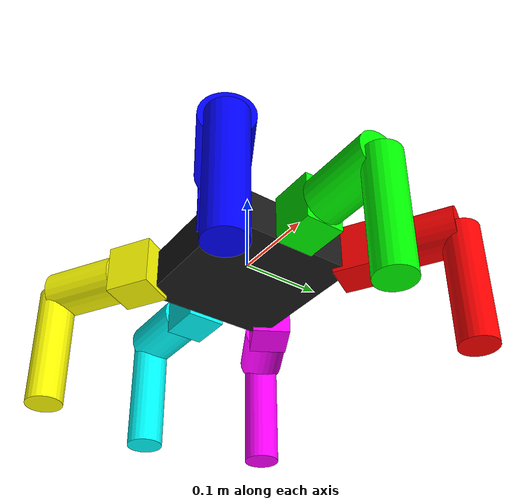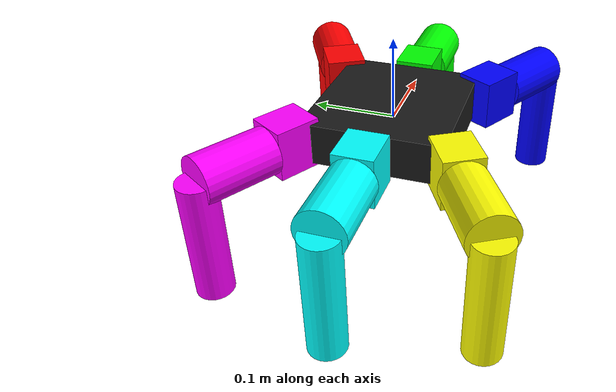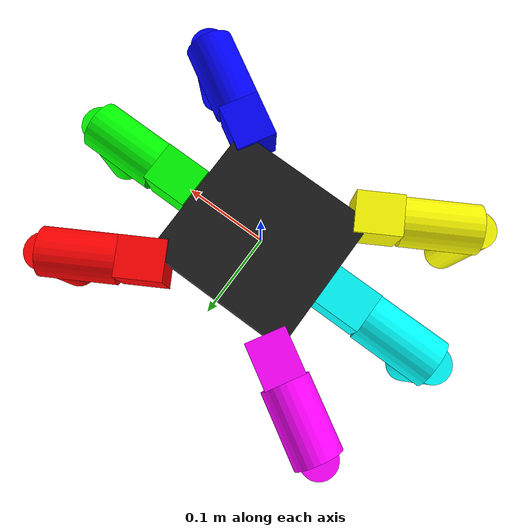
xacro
<?xml version="1.0"?>
<robot xmlns:xacro="http://ros.org/wiki/xacro" name="hexapod">

  <!-- ================= CONSTANTS ================= -->
  <xacro:property name="coxa_length" value="0.055"/>
  <xacro:property name="femur_length" value="0.09"/>
  <xacro:property name="tibia_length" value="0.15"/>

  <xacro:property name="coxa_width" value="0.048"/>
  <xacro:property name="coxa_height" value="0.06"/>

  <xacro:property name="femur_radius" value="0.029"/>
  <xacro:property name="tibia_radius" value="0.0225"/>

  <xacro:property name="cscale" value="0.95"/>

  <!-- ================= MATERIALS ================= -->
  <material name="black"><color rgba="0.1 0.1 0.1 1"/></material>
  <material name="red"><color rgba="1 0 0 1"/></material>
  <material name="green"><color rgba="0 1 0 1"/></material>
  <material name="blue"><color rgba="0 0 1 1"/></material>
  <material name="yellow"><color rgba="1 1 0 1"/></material>
  <material name="cyan"><color rgba="0 1 1 1"/></material>
  <material name="magenta"><color rgba="1 0 1 1"/></material>

  <!-- ================= BASE ================= -->
  <link name="base_link">
    <visual>
      <geometry>
        <box size="0.18 0.17 0.05"/>
      </geometry>
      <material name="black"/>
    </visual>
    <collision>
      <geometry>
        <box size="0.18 0.17 0.05"/>
      </geometry>
    </collision>
    <inertial>
      <mass value="1.0"/>
      <origin xyz="0 0 0"/>
      <inertia ixx="0.1" ixy="0.0" ixz="0.0" iyy="0.1" iyz="0.0" izz="0.1"/>
    </inertial>
  </link>

<!-- ================= LEG LINKS ================= -->
<xacro:macro name="leg" params="name x_offset y_offset yaw colour">

  <!-- COXA -->
  <link name="${name}_coxa">
    <visual>
      <origin xyz="${coxa_length/2} 0 0" rpy="0 0 0"/>
      <geometry>
        <box size="${coxa_length} ${coxa_width} ${coxa_height}"/>
      </geometry>
      <material name="${colour}"/>
    </visual>
    <collision>
      <origin xyz="${coxa_length/2} 0 0" rpy="0 0 0"/>
      <geometry>
        <box size="${coxa_length*cscale} ${coxa_width*cscale} ${coxa_height*cscale}"/>
      </geometry>
    </collision>
    <inertial>
      <mass value="0.1"/>
      <origin xyz="${coxa_length/2} 0 0"/>
      <inertia ixx="0.01" ixy="0.0" ixz="0.0" iyy="0.01" iyz="0.0" izz="0.01"/>
    </inertial>
  </link>

  <!-- FEMUR -->
  <link name="${name}_femur">
    <visual>
      <!-- Cylinder base aligned with joint -->
      <origin xyz="${femur_length/2} 0 0" rpy="0 -1.5708 0"/>
      <geometry>
        <cylinder length="${femur_length}" radius="${femur_radius}"/>
      </geometry>
      <material name="${colour}"/>
    </visual>
    <collision>
      <origin xyz="${femur_length/2} 0 0" rpy="0 -1.5708 0"/>
      <geometry>
        <cylinder length="${femur_length*cscale}" radius="${femur_radius*cscale}"/>
      </geometry>
    </collision>
    <inertial>
      <mass value="0.05"/>
      <origin xyz="${femur_length/2} 0 0"/>
      <inertia ixx="0.001" ixy="0.0" ixz="0.0" iyy="0.001" iyz="0.0" izz="0.001"/>
    </inertial>
  </link>

  <!-- TIBIA -->
  <link name="${name}_tibia">
    <visual>
      <origin xyz="${tibia_length/2} 0 0" rpy="0 -1.5708 0"/>
      <geometry>
        <cylinder length="${tibia_length}" radius="${tibia_radius}"/>
      </geometry>
      <material name="${colour}"/>
    </visual>
    <collision>
      <origin xyz="${tibia_length/2} 0 0" rpy="0 -1.5708 0"/>
      <geometry>
        <cylinder length="${tibia_length*cscale}" radius="${tibia_radius*cscale}"/>
      </geometry>
    </collision>
    <inertial>
      <mass value="0.05"/>
      <origin xyz="${tibia_length/2} 0 0"/>
      <inertia ixx="0.001" ixy="0.0" ixz="0.0" iyy="0.001" iyz="0.0" izz="0.001"/>
    </inertial>
  </link>

  <!-- COXA JOINT -->
  <joint name="${name}_coxa_joint" type="revolute">
    <parent link="base_link"/>
    <child link="${name}_coxa"/>
    <origin xyz="${x_offset} ${y_offset} 0" rpy="0 0 ${yaw}"/>
    <axis xyz="0 0 1"/>
    <limit lower="-1.57" upper="1.57" effort="1" velocity="1"/>
  </joint>

  <!-- FEMUR JOINT -->
  <joint name="${name}_femur_joint" type="revolute">
    <parent link="${name}_coxa"/>
    <child link="${name}_femur"/>
    <origin xyz="${coxa_length} 0 0" rpy="0 0 0"/>
    <axis xyz="0 1 0"/>
    <limit lower="-1.57" upper="1.57" effort="1" velocity="1"/>
  </joint>

  <!-- TIBIA JOINT -->
  <joint name="${name}_tibia_joint" type="revolute">
    <parent link="${name}_femur"/>
    <child link="${name}_tibia"/>
    <origin xyz="${femur_length} 0 0" rpy="0 1.5708 0"/>
    <axis xyz="0 1 0"/>
    <limit lower="-1.57" upper="1.57" effort="1" velocity="1"/>
  </joint>

  <!-- COXA TRANSMISSION -->
  <transmission name="${name}_coxa_trans">
    <type>transmission_interface/SimpleTransmission</type>
    <joint name="${name}_coxa_joint">
      <hardwareInterface>PositionJointInterface</hardwareInterface>
    </joint>
    <actuator name="${name}_coxa_motor">
      <hardwareInterface>PositionJointInterface</hardwareInterface>
      <mechanicalReduction>1</mechanicalReduction>
    </actuator>
  </transmission>

  <!-- FEMUR TRANSMISSION -->
  <transmission name="${name}_femur_trans">
    <type>transmission_interface/SimpleTransmission</type>
    <joint name="${name}_femur_joint">
      <hardwareInterface>PositionJointInterface</hardwareInterface>
    </joint>
    <actuator name="${name}_femur_motor">
      <hardwareInterface>PositionJointInterface</hardwareInterface>
      <mechanicalReduction>1</mechanicalReduction>
    </actuator>
  </transmission>

  <!-- TIBIA TRANSMISSION -->
  <transmission name="${name}_tibia _trans">
    <type>transmission_interface/SimpleTransmission</type>
    <joint name="${name}_tibia_joint">
      <hardwareInterface>PositionJointInterface</hardwareInterface>
    </joint>
    <actuator name="${name}_tibia_motor">
      <hardwareInterface>PositionJointInterface</hardwareInterface>
      <mechanicalReduction>1</mechanicalReduction>
    </actuator>
  </transmission>

</xacro:macro>

  <!-- ================= LEGS ================= -->
  <!-- Front left -->
  <xacro:leg name="leg1" x_offset="0.06733" y_offset="0.0846" yaw="0.5236" colour="red"/>

  <!-- Middle left -->
  <xacro:leg name="leg2" x_offset="0.090" y_offset="0" yaw="0" colour="green"/>

  <!-- Rear left -->
  <xacro:leg name="leg3" x_offset="0.06733" y_offset="-0.0846" yaw="-0.5236" colour="blue"/>

  <!-- Front right -->
  <xacro:leg name="leg4" x_offset="-0.06733" y_offset="-0.0846" yaw="-2.61799" colour="yellow"/>

  <!-- Middle right -->
  <xacro:leg name="leg5" x_offset="-0.090" y_offset="0" yaw="-3.14159" colour="cyan"/>

  <!-- Rear right -->
  <xacro:leg name="leg6" x_offset="-0.06733" y_offset="0.0846" yaw="2.61799" colour="magenta"/>

  <!-- ================= ROS2 CONTROL ================= -->
  <xacro:macro name="ros2_control_joint" params="joint_name">
    <joint name="${joint_name}">
      <command_interface name="position"/>
      <state_interface name="position"/>
      <state_interface name="velocity"/>
    </joint>
  </xacro:macro>

  <ros2_control name="HexapodHardware" type="system">
    <hardware>
      <plugin>gazebo_ros2_control/GazeboSystem</plugin>
    </hardware>
    <xacro:ros2_control_joint joint_name="leg1_coxa_joint"/>
    <xacro:ros2_control_joint joint_name="leg1_femur_joint"/>
    <xacro:ros2_control_joint joint_name="leg1_tibia_joint"/>
    <xacro:ros2_control_joint joint_name="leg2_coxa_joint"/>
    <xacro:ros2_control_joint joint_name="leg2_femur_joint"/>
    <xacro:ros2_control_joint joint_name="leg2_tibia_joint"/>
    <xacro:ros2_control_joint joint_name="leg3_coxa_joint"/>
    <xacro:ros2_control_joint joint_name="leg3_femur_joint"/>
    <xacro:ros2_control_joint joint_name="leg3_tibia_joint"/>
    <xacro:ros2_control_joint joint_name="leg4_coxa_joint"/>
    <xacro:ros2_control_joint joint_name="leg4_femur_joint"/>
    <xacro:ros2_control_joint joint_name="leg4_tibia_joint"/>
    <xacro:ros2_control_joint joint_name="leg5_coxa_joint"/>
    <xacro:ros2_control_joint joint_name="leg5_femur_joint"/>
    <xacro:ros2_control_joint joint_name="leg5_tibia_joint"/>
    <xacro:ros2_control_joint joint_name="leg6_coxa_joint"/>
    <xacro:ros2_control_joint joint_name="leg6_femur_joint"/>
    <xacro:ros2_control_joint joint_name="leg6_tibia_joint"/>
  </ros2_control>

  <gazebo>
    <plugin name="gazebo_ros2_control" filename="libgazebo_ros2_control.so"/>
  </gazebo>

</robot>
